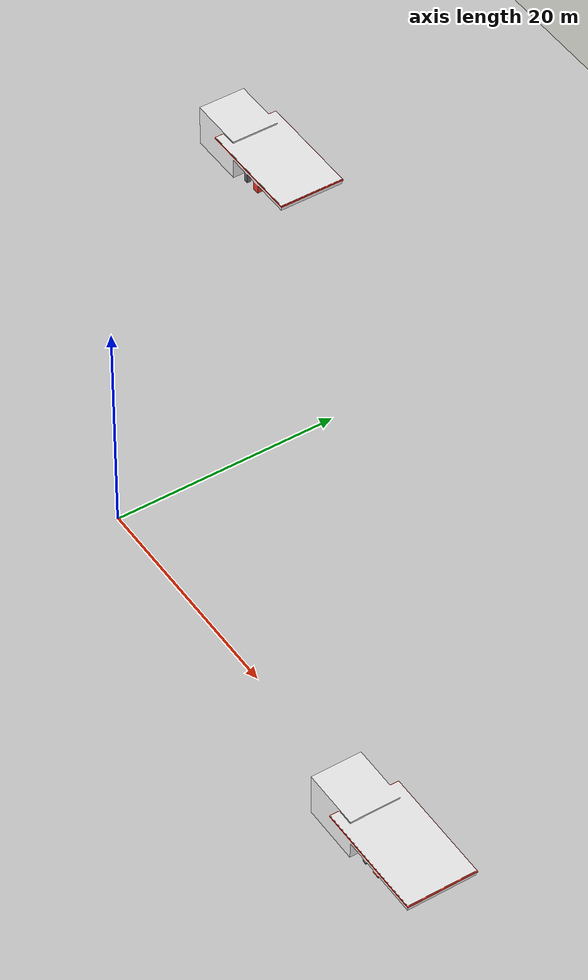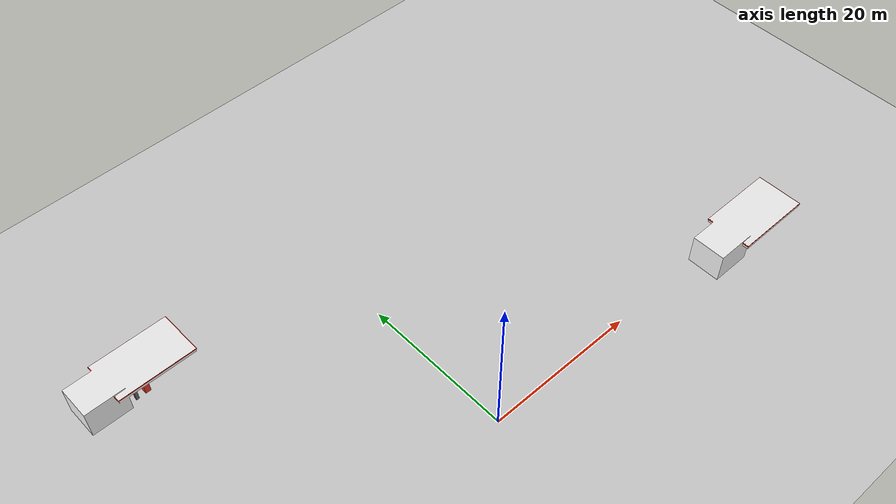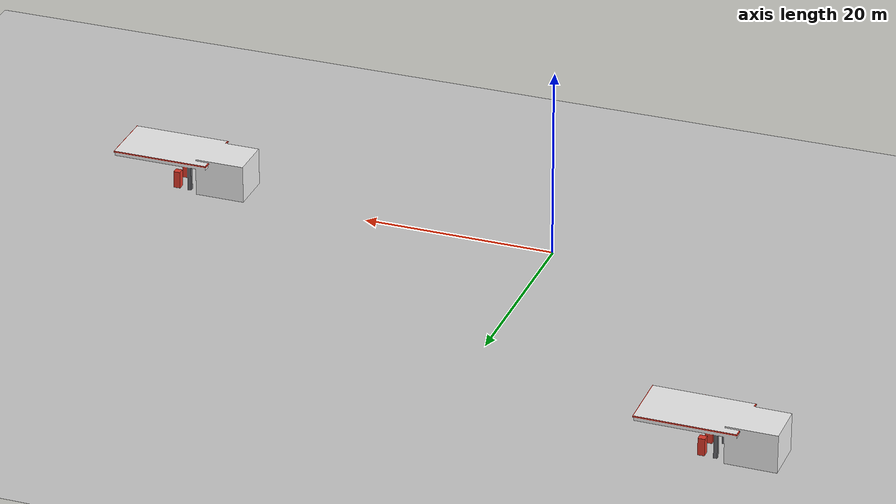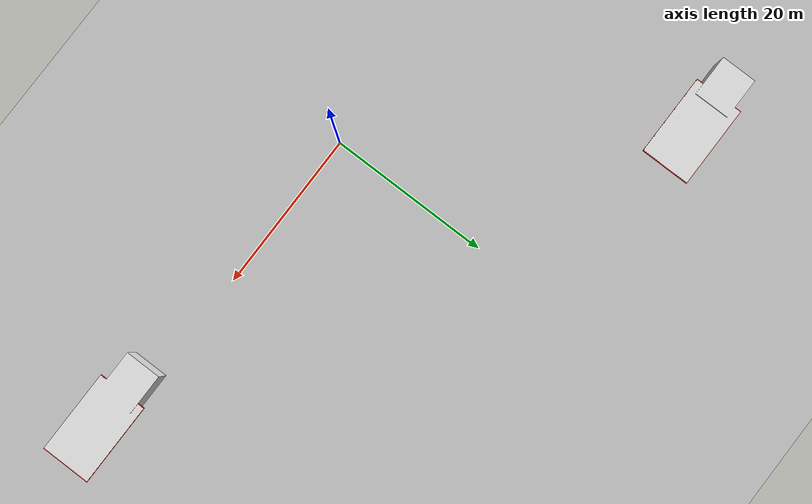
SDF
<sdf version="1.4">
 <world name="default">
  <light name="sun" type="directional">
   <pose>0 0 10 0 -0 0</pose>
   <diffuse>0.8 0.8 0.8 1</diffuse>
   <specular>0.2 0.2 0.2 1</specular>
   <attenuation>
    <range>1000</range>
    <constant>0.9</constant>
    <linear>0.01</linear>
    <quadratic>0.001</quadratic>
   </attenuation>
   <direction>-0.5 0.1 -0.9</direction>
  </light>
  <model name="ground_plane">
   <static>1</static>
   <link name="link">
    <collision name="collision">
     <geometry><plane><normal>0 0 1</normal><size>100 100</size></plane></geometry>
     <surface><friction><ode><mu>100</mu><mu2>50</mu2></ode></friction></surface>
    </collision>
    <visual name="visual">
     <cast_shadows>0</cast_shadows>
     <geometry><plane><normal>0 0 1</normal><size>100 100</size></plane></geometry>
     <material>
      <script><uri>file://media/materials/scripts/gazebo.material</uri><name>Gazebo/Grey</name></script>
     </material>
    </visual>
    <velocity_decay><linear>0</linear><angular>0</angular></velocity_decay>
   </link>
  </model>
  <physics type="ode">
   <max_step_size>0.001</max_step_size>
   <real_time_factor>1</real_time_factor>
   <real_time_update_rate>1000</real_time_update_rate>
   <gravity>0 0 -9.8</gravity>
  </physics>
  <scene><ambient>0.4 0.4 0.4 1</ambient><background>0.7 0.7 0.7 1</background><shadows>1</shadows></scene>
  <spherical_coordinates>
   <surface_model>EARTH_WGS84</surface_model>
   <latitude_deg>0</latitude_deg>
   <longitude_deg>0</longitude_deg>
   <elevation>0</elevation>
   <heading_deg>0</heading_deg>
  </spherical_coordinates>
  <model name="Gas Station">
   <static>1</static>
   <link name="link">
    <collision name="collision">
     <geometry><mesh><uri>model://gas_station/meshes/gas_station.dae</uri></mesh></geometry>
    </collision>
    <visual name="visual">
     <geometry><mesh><uri>model://gas_station/meshes/gas_station.dae</uri></mesh></geometry>
     <material>
      <script>
       <uri>model://gas_station/materials/scripts</uri>
       <uri>model://gas_station/materials/textures</uri>
       <name>GasStation/Diffuse</name>
      </script>
      <shader type="normal_map_object_space"><normal_map>GasStation_Normal.png</normal_map></shader>
     </material>
    </visual>
    <velocity_decay><linear>0</linear><angular>0</angular></velocity_decay>
   </link>
   <pose>-27 31 0 0 -0 0</pose>
  </model>
  <model name="Gas Station_1">
   <static>1</static>
   <link name="link">
    <collision name="collision">
     <geometry><mesh><uri>model://gas_station/meshes/gas_station.dae</uri></mesh></geometry>
    </collision>
    <visual name="visual">
     <geometry><mesh><uri>model://gas_station/meshes/gas_station.dae</uri></mesh></geometry>
     <material>
      <script>
       <uri>model://gas_station/materials/scripts</uri>
       <uri>model://gas_station/materials/textures</uri>
       <name>GasStation/Diffuse</name>
      </script>
      <shader type="normal_map_object_space"><normal_map>GasStation_Normal.png</normal_map></shader>
     </material>
    </visual>
    <velocity_decay><linear>0</linear><angular>0</angular></velocity_decay>
   </link>
   <pose>39.5544 -1.59245 0 0 -0 0</pose>
  </model>
 </world>
</sdf>
